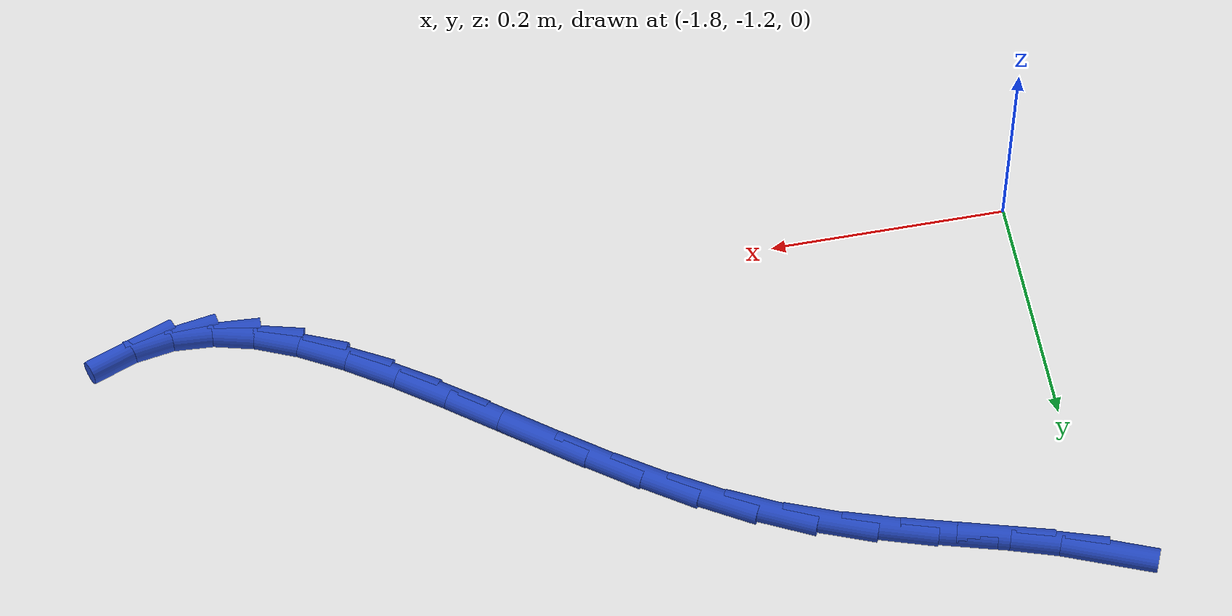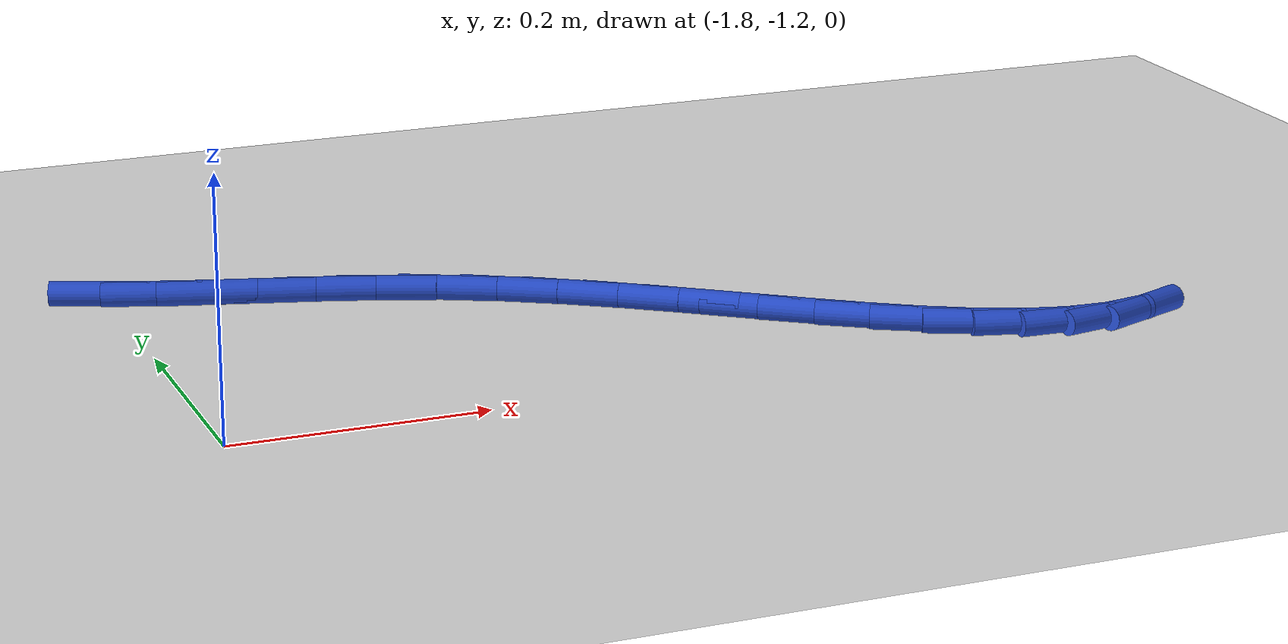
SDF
<sdf version="1.6">
 <world name="default">
  <model name="ground_plane">
   <static>1</static>
   <link name="link">
    <collision name="collision">
     <geometry><plane><normal>0 0 1</normal><size>100 100</size></plane></geometry>
     <surface><friction><ode><mu>100</mu><mu2>50</mu2></ode></friction></surface>
    </collision>
    <visual name="visual">
     <cast_shadows>0</cast_shadows>
     <geometry><plane><normal>0 0 1</normal><size>100 100</size></plane></geometry>
     <material>
      <script><uri>file://media/materials/scripts/gazebo.material</uri><name>Gazebo/WhiteGlow</name></script>
     </material>
    </visual>
   </link>
  </model>
  <model name="line">
   <link name="link_102">
    <pose>-1.8082757528182585 -0.857167507426953 0.01 0 1.57 -0.3844603383305614</pose>
    <collision name="collision">
     <geometry><cylinder><radius>0.01</radius><length>0.08</length></cylinder></geometry>
    </collision>
    <visual name="visual">
     <material>
      <script><name>Gazebo/Blue</name><uri>file://media/materials/scripts/gazebo.material</uri></script>
     </material>
     <geometry><cylinder><radius>0.01</radius><length>0.08</length></cylinder></geometry>
    </visual>
   </link>
   <link name="link_103">
    <pose>-1.7701815826349987 -0.8725801757208564 0.01 0 1.57 -0.310035728355715</pose>
    <collision name="collision">
     <geometry><cylinder><radius>0.01</radius><length>0.08</length></cylinder></geometry>
    </collision>
    <visual name="visual">
     <material>
      <script><name>Gazebo/Blue</name><uri>file://media/materials/scripts/gazebo.material</uri></script>
     </material>
     <geometry><cylinder><radius>0.01</radius><length>0.08</length></cylinder></geometry>
    </visual>
   </link>
   <link name="link_104">
    <pose>-1.72838251536424 -0.8859712133236406 0.01 0 1.57 -0.2773535761412812</pose>
    <collision name="collision">
     <geometry><cylinder><radius>0.01</radius><length>0.08</length></cylinder></geometry>
    </collision>
    <visual name="visual">
     <material>
      <script><name>Gazebo/Blue</name><uri>file://media/materials/scripts/gazebo.material</uri></script>
     </material>
     <geometry><cylinder><radius>0.01</radius><length>0.08</length></cylinder></geometry>
    </visual>
   </link>
   <link name="link_105">
    <pose>-1.6839745236220707 -0.8986137799062446 0.01 0 1.57 -0.279245366882014</pose>
    <collision name="collision">
     <geometry><cylinder><radius>0.01</radius><length>0.08</length></cylinder></geometry>
    </collision>
    <visual name="visual">
     <material>
      <script><name>Gazebo/Blue</name><uri>file://media/materials/scripts/gazebo.material</uri></script>
     </material>
     <geometry><cylinder><radius>0.01</radius><length>0.08</length></cylinder></geometry>
    </visual>
   </link>
   <link name="link_106">
    <pose>-1.6380535800245781 -0.9117810351396081 0.01 0 1.57 -0.3123819316408135</pose>
    <collision name="collision">
     <geometry><cylinder><radius>0.01</radius><length>0.08</length></cylinder></geometry>
    </collision>
    <visual name="visual">
     <material>
      <script><name>Gazebo/Blue</name><uri>file://media/materials/scripts/gazebo.material</uri></script>
     </material>
     <geometry><cylinder><radius>0.01</radius><length>0.08</length></cylinder></geometry>
    </visual>
   </link>
   <link name="link_107">
    <pose>-1.5917156571878506 -0.9267461386946696 0.01 0 1.57 -0.3762037272771808</pose>
    <collision name="collision">
     <geometry><cylinder><radius>0.01</radius><length>0.08</length></cylinder></geometry>
    </collision>
    <visual name="visual">
     <material>
      <script><name>Gazebo/Blue</name><uri>file://media/materials/scripts/gazebo.material</uri></script>
     </material>
     <geometry><cylinder><radius>0.01</radius><length>0.08</length></cylinder></geometry>
    </visual>
   </link>
   <link name="link_108">
    <pose>-1.546056711367203 -0.9447822199864693 0.01 0 1.57 -0.46165273516173316</pose>
    <collision name="collision">
     <geometry><cylinder><radius>0.01</radius><length>0.08</length></cylinder></geometry>
    </collision>
    <visual name="visual">
     <material>
      <script><name>Gazebo/Blue</name><uri>file://media/materials/scripts/gazebo.material</uri></script>
     </material>
     <geometry><cylinder><radius>0.01</radius><length>0.08</length></cylinder></geometry>
    </visual>
   </link>
   <link name="link_109">
    <pose>-1.5019394019276129 -0.9667309735968396 0.01 0 1.57 -0.5346221559036676</pose>
    <collision name="collision">
     <geometry><cylinder><radius>0.01</radius><length>0.08</length></cylinder></geometry>
    </collision>
    <visual name="visual">
     <material>
      <script><name>Gazebo/Blue</name><uri>file://media/materials/scripts/gazebo.material</uri></script>
     </material>
     <geometry><cylinder><radius>0.01</radius><length>0.08</length></cylinder></geometry>
    </visual>
   </link>
   <link name="link_110">
    <pose>-1.459405946575754 -0.9919168552387487 0.01 0 1.57 -0.5883791777181375</pose>
    <collision name="collision">
     <geometry><cylinder><radius>0.01</radius><length>0.08</length></cylinder></geometry>
    </collision>
    <visual name="visual">
     <material>
      <script><name>Gazebo/Blue</name><uri>file://media/materials/scripts/gazebo.material</uri></script>
     </material>
     <geometry><cylinder><radius>0.01</radius><length>0.08</length></cylinder></geometry>
    </visual>
   </link>
   <link name="link_111">
    <pose>-1.4183183053206585 -1.019330970919545 0.01 0 1.57 -0.6238897887477532</pose>
    <collision name="collision">
     <geometry><cylinder><radius>0.01</radius><length>0.08</length></cylinder></geometry>
    </collision>
    <visual name="visual">
     <material>
      <script><name>Gazebo/Blue</name><uri>file://media/materials/scripts/gazebo.material</uri></script>
     </material>
     <geometry><cylinder><radius>0.01</radius><length>0.08</length></cylinder></geometry>
    </visual>
   </link>
   <link name="link_112">
    <pose>-1.3785384381713612 -1.047964426646577 0.01 0 1.57 -0.6416137899647358</pose>
    <collision name="collision">
     <geometry><cylinder><radius>0.01</radius><length>0.08</length></cylinder></geometry>
    </collision>
    <visual name="visual">
     <material>
      <script><name>Gazebo/Blue</name><uri>file://media/materials/scripts/gazebo.material</uri></script>
     </material>
     <geometry><cylinder><radius>0.01</radius><length>0.08</length></cylinder></geometry>
    </visual>
   </link>
   <link name="link_113">
    <pose>-1.3399283051368935 -1.0768083284271932 0.01 0 1.57 -0.6411402640047321</pose>
    <collision name="collision">
     <geometry><cylinder><radius>0.01</radius><length>0.08</length></cylinder></geometry>
    </collision>
    <visual name="visual">
     <material>
      <script><name>Gazebo/Blue</name><uri>file://media/materials/scripts/gazebo.material</uri></script>
     </material>
     <geometry><cylinder><radius>0.01</radius><length>0.08</length></cylinder></geometry>
    </visual>
   </link>
   <link name="link_114">
    <pose>-1.302349866226289 -1.1048537822687419 0.01 0 1.57 -0.6208754381235714</pose>
    <collision name="collision">
     <geometry><cylinder><radius>0.01</radius><length>0.08</length></cylinder></geometry>
    </collision>
    <visual name="visual">
     <material>
      <script><name>Gazebo/Blue</name><uri>file://media/materials/scripts/gazebo.material</uri></script>
     </material>
     <geometry><cylinder><radius>0.01</radius><length>0.08</length></cylinder></geometry>
    </visual>
   </link>
   <link name="link_115">
    <pose>-1.2656650814485801 -1.131091894178572 0.01 0 1.57 -0.577702894715266</pose>
    <collision name="collision">
     <geometry><cylinder><radius>0.01</radius><length>0.08</length></cylinder></geometry>
    </collision>
    <visual name="visual">
     <material>
      <script><name>Gazebo/Blue</name><uri>file://media/materials/scripts/gazebo.material</uri></script>
     </material>
     <geometry><cylinder><radius>0.01</radius><length>0.08</length></cylinder></geometry>
    </visual>
   </link>
   <link name="link_116">
    <pose>-1.229735910812799 -1.1545137701640318 0.01 0 1.57 -0.5066481120023907</pose>
    <collision name="collision">
     <geometry><cylinder><radius>0.01</radius><length>0.08</length></cylinder></geometry>
    </collision>
    <visual name="visual">
     <material>
      <script><name>Gazebo/Blue</name><uri>file://media/materials/scripts/gazebo.material</uri></script>
     </material>
     <geometry><cylinder><radius>0.01</radius><length>0.08</length></cylinder></geometry>
    </visual>
   </link>
   <link name="link_117">
    <pose>-1.1944243143279805 -1.1741105162324699 0.01 0 1.57 -0.4008755591900867</pose>
    <collision name="collision">
     <geometry><cylinder><radius>0.01</radius><length>0.08</length></cylinder></geometry>
    </collision>
    <visual name="visual">
     <material>
      <script><name>Gazebo/Blue</name><uri>file://media/materials/scripts/gazebo.material</uri></script>
     </material>
     <geometry><cylinder><radius>0.01</radius><length>0.08</length></cylinder></geometry>
    </visual>
   </link>
   <link name="link_118">
    <pose>-1.159592252003156 -1.188873238391234 0.01 0 1.57 -0.25307102502937184</pose>
    <collision name="collision">
     <geometry><cylinder><radius>0.01</radius><length>0.08</length></cylinder></geometry>
    </collision>
    <visual name="visual">
     <material>
      <script><name>Gazebo/Blue</name><uri>file://media/materials/scripts/gazebo.material</uri></script>
     </material>
     <geometry><cylinder><radius>0.01</radius><length>0.08</length></cylinder></geometry>
    </visual>
   </link>
   <link name="link_119">
    <pose>-1.1251016838473593 -1.1977930426476737 0.01 0 1.57 -0.060241004556138796</pose>
    <collision name="collision">
     <geometry><cylinder><radius>0.01</radius><length>0.08</length></cylinder></geometry>
    </collision>
    <visual name="visual">
     <material>
      <script><name>Gazebo/Blue</name><uri>file://media/materials/scripts/gazebo.material</uri></script>
     </material>
     <geometry><cylinder><radius>0.01</radius><length>0.08</length></cylinder></geometry>
    </visual>
   </link>
   <link name="link_120">
    <pose>-1.0908145698696228 -1.199861035009137 0.01 0 1.57 0.1647435829472751</pose>
    <collision name="collision">
     <geometry><cylinder><radius>0.01</radius><length>0.08</length></cylinder></geometry>
    </collision>
    <visual name="visual">
     <material>
      <script><name>Gazebo/Blue</name><uri>file://media/materials/scripts/gazebo.material</uri></script>
     </material>
     <geometry><cylinder><radius>0.01</radius><length>0.08</length></cylinder></geometry>
    </visual>
   </link>
   <link name="link_121">
    <pose>-1.0565950876989239 -1.1941720342014948 0.01 0 1.57 0.3645803920020152</pose>
    <collision name="collision">
     <geometry><cylinder><radius>0.01</radius><length>0.08</length></cylinder></geometry>
    </collision>
    <visual name="visual">
     <material>
      <script><name>Gazebo/Blue</name><uri>file://media/materials/scripts/gazebo.material</uri></script>
     </material>
     <geometry><cylinder><radius>0.01</radius><length>0.08</length></cylinder></geometry>
    </visual>
   </link>
  </model>
 </world>
</sdf>
